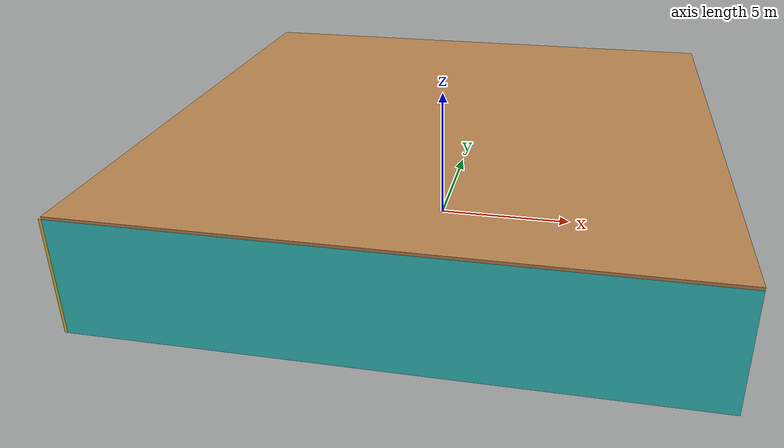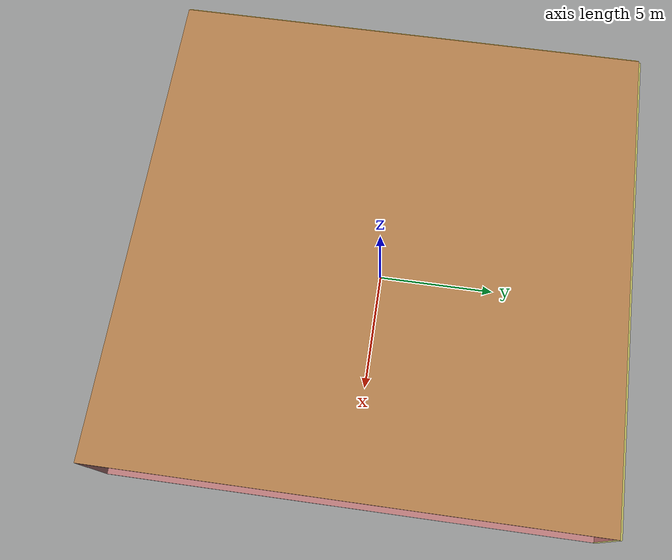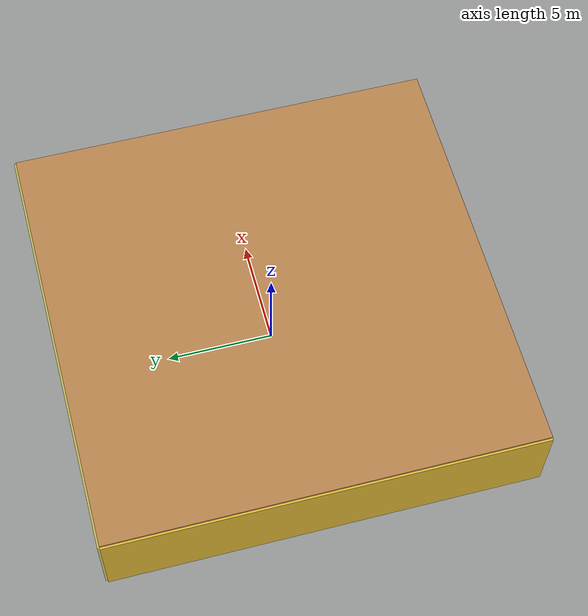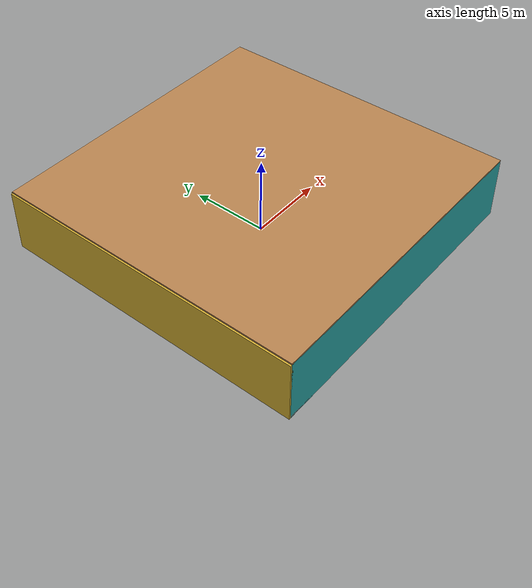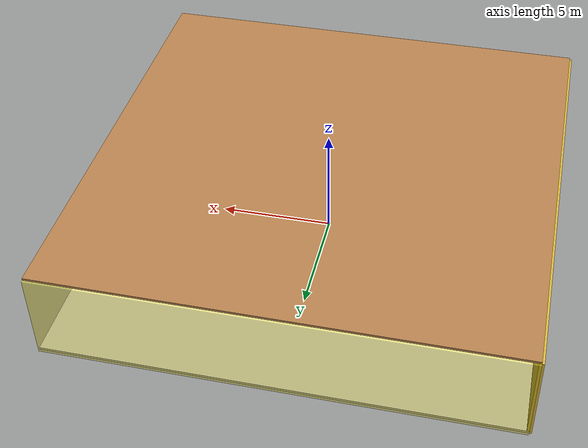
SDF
<sdf version="1.4">
 <world name="default">
  <physics type="ode">
   <max_step_size>0.001</max_step_size>
   <real_time_factor>1</real_time_factor>
   <real_time_update_rate>1000</real_time_update_rate>
   <gravity>0 0 -9.8</gravity>
  </physics>
  <scene><ambient>0.4 0.4 0.4 1</ambient><background>0.7 0.7 0.7 1</background><shadows>1</shadows></scene>
  <model name="Surrounding">
   <static>1</static>
   <link name="Ceiling">
    <collision name="Ceiling_Collision"><geometry><box><size>20 20 0.1</size></box></geometry></collision>
    <visual name="Ceiling_Visual">
     <geometry><box><size>20 20 0.1</size></box></geometry>
     <material>
      <script><uri>file://media/materials/scripts/gazebo.material</uri><name>Gazebo/WoodPallet</name></script>
     </material>
    </visual>
    <pose>0 0 4.05 0 0 0</pose>
   </link>
   <link name="Wall_South">
    <collision name="Wall_South_Collision">
     <geometry><box><size>20 0 4</size></box></geometry>
     <pose>0 0 2 0 -0 0</pose>
    </collision>
    <visual name="Wall_South_Visual">
     <pose>0 0 2 0 -0 0</pose>
     <geometry><box><size>20 0 4</size></box></geometry>
     <material>
      <script><uri>file://media/materials/scripts/gazebo.material</uri><name>Gazebo/Turquoise</name></script>
     </material>
    </visual>
    <velocity_decay><linear>0</linear><angular>0</angular></velocity_decay>
    <pose>0 -10 0 0 -0 0</pose>
   </link>
   <link name="Wall_East">
    <collision name="Wall_21_Collision">
     <geometry><box><size>20 0 4</size></box></geometry>
     <pose>0 0 2 0 -0 0</pose>
    </collision>
    <visual name="Wall_21_Visual">
     <pose>0 0 2 0 -0 0</pose>
     <geometry><box><size>20 0 4</size></box></geometry>
     <material>
      <script><uri>file://media/materials/scripts/gazebo.material</uri><name>Gazebo/RedTransparent</name></script>
     </material>
    </visual>
    <velocity_decay><linear>0</linear><angular>0</angular></velocity_decay>
    <pose>10 0 0 0 -0 1.5708</pose>
   </link>
   <link name="Wall_North">
    <collision name="Wall_22_Collision">
     <geometry><box><size>20 0.2 4</size></box></geometry>
     <pose>0 0 2 0 -0 0</pose>
    </collision>
    <visual name="Wall_22_Visual">
     <pose>0 0 2 0 -0 0</pose>
     <geometry><box><size>20 0.2 4</size></box></geometry>
     <material>
      <script>
       <uri>file://media/materials/scripts/gazebo.material</uri>
       <name>Gazebo/YellowTransparent</name>
      </script>
     </material>
    </visual>
    <velocity_decay><linear>0</linear><angular>0</angular></velocity_decay>
    <pose>0 10 0 0 -0 0</pose>
   </link>
   <link name="Wall_West">
    <collision name="Wall_23_Collision">
     <geometry><box><size>20 0.2 4</size></box></geometry>
     <pose>0 0 2 0 -0 0</pose>
    </collision>
    <visual name="Wall_23_Visual">
     <pose>0 0 2 0 -0 0</pose>
     <geometry><box><size>20 0.2 4</size></box></geometry>
     <material>
      <script><uri>file://media/materials/scripts/gazebo.material</uri><name>Gazebo/Gold</name></script>
     </material>
    </visual>
    <velocity_decay><linear>0</linear><angular>0</angular></velocity_decay>
    <pose>-10 0 0 0 0 -1.5708</pose>
   </link>
   <link name="Ground_link">
    <collision name="collision">
     <pose>0 0 .05 0 -0 0</pose>
     <geometry><box><size>20 20 0.1</size></box></geometry>
    </collision>
    <visual name="visual">
     <pose>0 0 .05 0 -0 0</pose>
     <geometry><box><size>20 20 0.1</size></box></geometry>
     <material>
      <script><uri>file://media/materials/scripts/gazebo.material</uri><name>Gazebo/White</name></script>
     </material>
    </visual>
   </link>
   <static>1</static>
  </model>
  <spherical_coordinates>
   <surface_model>EARTH_WGS84</surface_model>
   <latitude_deg>0</latitude_deg>
   <longitude_deg>0</longitude_deg>
   <elevation>0</elevation>
   <heading_deg>0</heading_deg>
  </spherical_coordinates>
  <light name="lightball_0" type="diffuse">
   <diffuse>0.8 0.8 0.8 1</diffuse>
   <specular>0.2 0.2 0.2 1</specular>
   <attenuation>
    <range>100</range>
    <constant>0.7</constant>
    <linear>0.01</linear>
    <quadratic>0.001</quadratic>
   </attenuation>
   <direction>-0.5 0.1 -0.9</direction>
   <pose>-9.03636289481 1.47165214502 2.31614166942 0 0 0</pose>
  </light>
  <light name="lightball_1" type="diffuse">
   <diffuse>0.8 0.8 0.8 1</diffuse>
   <specular>0.2 0.2 0.2 1</specular>
   <attenuation>
    <range>100</range>
    <constant>0.7</constant>
    <linear>0.01</linear>
    <quadratic>0.001</quadratic>
   </attenuation>
   <direction>-0.5 0.1 -0.9</direction>
   <pose>8.59362406491 -9.85261611488 1.03695692033 0 0 0</pose>
  </light>
  <light name="lightball_2" type="diffuse">
   <diffuse>0.8 0.8 0.8 1</diffuse>
   <specular>0.2 0.2 0.2 1</specular>
   <attenuation>
    <range>100</range>
    <constant>0.7</constant>
    <linear>0.01</linear>
    <quadratic>0.001</quadratic>
   </attenuation>
   <direction>-0.5 0.1 -0.9</direction>
   <pose>-7.94264719772 0.969486508586 3.21072127222 0 0 0</pose>
  </light>
  <light name="lightball_3" type="diffuse">
   <diffuse>0.8 0.8 0.8 1</diffuse>
   <specular>0.2 0.2 0.2 1</specular>
   <attenuation>
    <range>100</range>
    <constant>0.7</constant>
    <linear>0.01</linear>
    <quadratic>0.001</quadratic>
   </attenuation>
   <direction>-0.5 0.1 -0.9</direction>
   <pose>-5.44958145623 -8.55731143074 2.78726445087 0 0 0</pose>
  </light>
  <light name="lightball_4" type="diffuse">
   <diffuse>0.8 0.8 0.8 1</diffuse>
   <specular>0.2 0.2 0.2 1</specular>
   <attenuation>
    <range>100</range>
    <constant>0.7</constant>
    <linear>0.01</linear>
    <quadratic>0.001</quadratic>
   </attenuation>
   <direction>-0.5 0.1 -0.9</direction>
   <pose>8.93254441378 4.86731255997 0.743466205702 0 0 0</pose>
  </light>
  <light name="lightball_5" type="diffuse">
   <diffuse>0.8 0.8 0.8 1</diffuse>
   <specular>0.2 0.2 0.2 1</specular>
   <attenuation>
    <range>100</range>
    <constant>0.7</constant>
    <linear>0.01</linear>
    <quadratic>0.001</quadratic>
   </attenuation>
   <direction>-0.5 0.1 -0.9</direction>
   <pose>0.436467710269 4.59688691055 2.11207411911 0 0 0</pose>
  </light>
  <include><uri>model://table</uri><pose>-4.09295318396 -8.05550258461 0 0 0 2.33854567952</pose></include>
 </world>
</sdf>

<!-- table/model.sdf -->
<sdf version="1.5">
  <model name="table">
    <static>true</static>
    <link name="link">
      <collision name="surface">
        <pose>0 0 1.0 0 0 0</pose>
        <geometry>
          <box>
            <size>1.5 0.8 0.03</size>
          </box>
        </geometry>
        <surface>
          <friction>
            <ode>
              <mu>0.6</mu>
              <mu2>0.6</mu2>
            </ode>
          </friction>
        </surface>
      </collision>
      <visual name="visual1">
        <pose>0 0 1.0 0 0 0</pose>
        <geometry>
          <box>
            <size>1.5 0.8 0.03</size>
          </box>
        </geometry>
        <material>
          <script>
            <uri>model://media/materials/scripts/gazebo.material</uri>
            <name>Gazebo/Wood</name>
          </script>
        </material>
      </visual>
      <collision name="front_left_leg">
        <pose>0.68 0.38 0.5 0 0 0</pose>
        <geometry>
          <cylinder>
            <radius>0.02</radius>
            <length>1.0</length>
          </cylinder>
        </geometry>
      </collision>
      <visual name="front_left_leg">
        <pose>0.68 0.38 0.5 0 0 0</pose>
        <geometry>
          <cylinder>
            <radius>0.02</radius>
            <length>1.0</length>
          </cylinder>
        </geometry>
        <material>
          <script>
            <uri>model://media/materials/scripts/gazebo.material</uri>
            <name>Gazebo/Grey</name>
          </script>
        </material>
      </visual>
      <collision name="front_right_leg">
        <pose>0.68 -0.38 0.5 0 0 0</pose>
        <geometry>
          <cylinder>
            <radius>0.02</radius>
            <length>1.0</length>
          </cylinder>
        </geometry>
      </collision>
      <visual name="front_right_leg">
        <pose>0.68 -0.38 0.5 0 0 0</pose>
        <geometry>
          <cylinder>
            <radius>0.02</radius>
            <length>1.0</length>
          </cylinder>
        </geometry>
        <material>
          <script>
            <uri>model://media/materials/scripts/gazebo.material</uri>
            <name>Gazebo/Grey</name>
          </script>
        </material>
      </visual>
      <collision name="back_right_leg">
        <pose>-0.68 -0.38 0.5 0 0 0</pose>
        <geometry>
          <cylinder>
            <radius>0.02</radius>
            <length>1.0</length>
          </cylinder>
        </geometry>
      </collision>
      <visual name="back_right_leg">
        <pose>-0.68 -0.38 0.5 0 0 0</pose>
        <geometry>
          <cylinder>
            <radius>0.02</radius>
            <length>1.0</length>
          </cylinder>
        </geometry>
        <material>
          <script>
            <uri>model://media/materials/scripts/gazebo.material</uri>
            <name>Gazebo/Grey</name>
          </script>
        </material>
      </visual>
      <collision name="back_left_leg">
        <pose>-0.68 0.38 0.5 0 0 0</pose>
        <geometry>
          <cylinder>
            <radius>0.02</radius>
            <length>1.0</length>
          </cylinder>
        </geometry>
      </collision>
      <visual name="back_left_leg">
        <pose>-0.68 0.38 0.5 0 0 0</pose>
        <geometry>
          <cylinder>
            <radius>0.02</radius>
            <length>1.0</length>
          </cylinder>
        </geometry>
        <material>
          <script>
            <uri>model://media/materials/scripts/gazebo.material</uri>
            <name>Gazebo/Grey</name>
          </script>
        </material>
      </visual>
    </link>
  </model>
</sdf>
